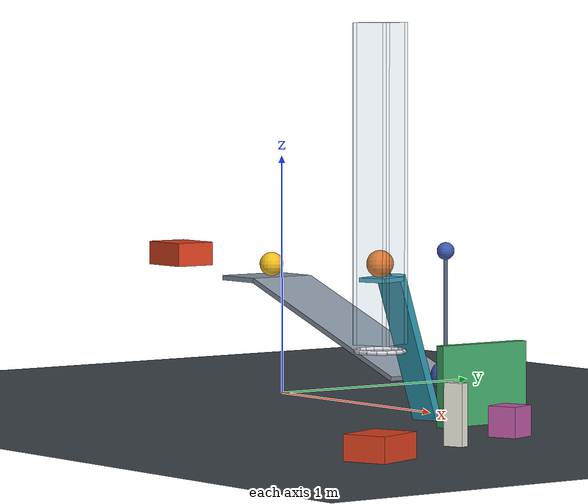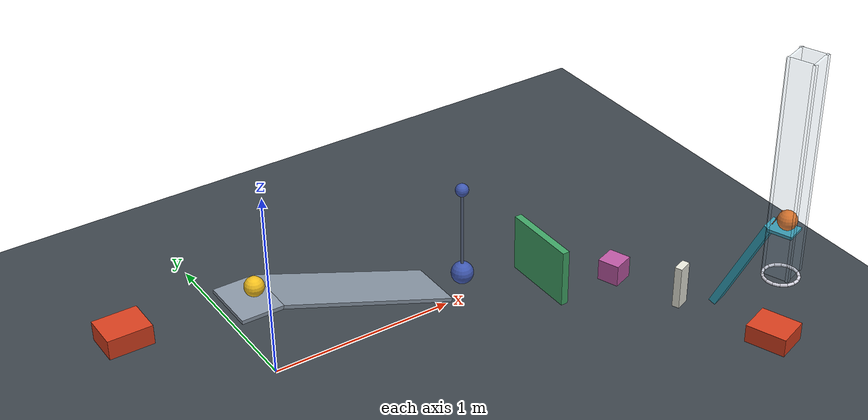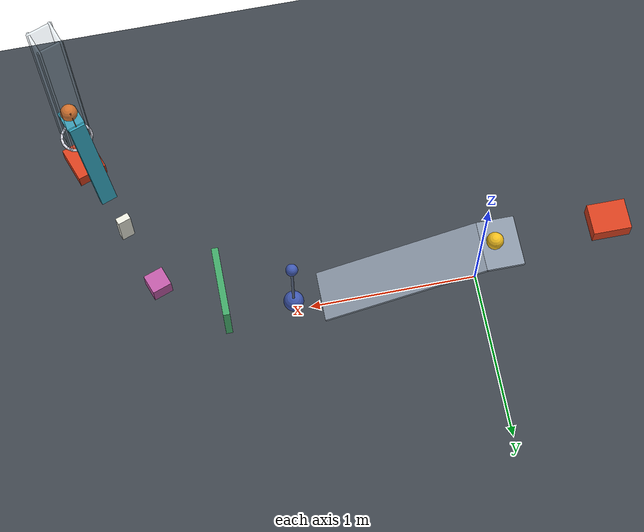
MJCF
<mujoco model="revised_passive_chain">
  <compiler angle="degree" autolimits="true"/>
  <option timestep="0.002" gravity="0 0 -9.81" integrator="implicitfast" solver="Newton" iterations="100" cone="elliptic" impratio="10" o_friction="0.68 0.68 0.005 0.002 0.002" o_solref="0.008 0.6901" o_solimp="0.95 0.99 0.001 0.5 2">
    <flag override="enable"/>
  </option>
  <size njmax="2000" nconmax="500"/>

  <!-- Global contact override sets sliding friction to 0.68. -->
  <!-- Damping ratio 0.6901 approximates restitution 0.05; it is not an exact restitution law. -->
  <!-- Small rolling friction dissipates residual ball motion. -->
  <!-- All bodies start with zero velocity. There are no motors or timed controls. -->

  <worldbody>
    <light name="main_light" pos="1 -1 5" dir="0 0 -1" diffuse="0.9 0.9 0.9"/>
    <geom name="floor" type="plane" pos="0 0 0" size="6 6 0.1" condim="6" friction="0.68 0.005 0.002" rgba="0.24 0.27 0.30 1"/>

    <site name="cart1_spring_anchor" pos="-0.745 0 0.552020143" size="0.004" rgba="0.85 0.35 0.12 1"/>
    <site name="pendulum1_spring_anchor" pos="1.099692621 0 0.16" size="0.004" rgba="0.85 0.35 0.12 1"/>
    <site name="door1_spring_anchor" pos="1.501086426 -0.05 0.165" size="0.004" rgba="0.85 0.35 0.12 1"/>
    <site name="lever1_spring_anchor" pos="2.173779 -1.145639 0.760631" size="0.004" rgba="0.85 0.35 0.12 1"/>

    <!-- A suspended slide avoids adding floor friction to the spring-driven cart. -->
    <body name="cart1" pos="-0.735 0 0.552020143">
      <joint name="cart1_slide" type="slide" axis="1 0 0" damping="0.20" limited="true" range="0 0.72" solreflimit="0.004 1" solimplimit="0.99 0.999 0.0001"/>
      <geom name="cart1_box" type="box" size="0.11 0.09 0.05" mass="0.50" condim="6" friction="0.68 0.005 0.002" rgba="0.85 0.25 0.12 1"/>
      <site name="cart1_spring_site" pos="0 0 0" size="0.004" rgba="0.85 0.35 0.12 1"/>
    </body>

    <!-- Inclined surface is 1.00 m long, 0.30 m wide, and inclined 20 degrees. -->
    <!-- Its low surface edge is at x=0.939692621, z=0.15. -->
    <body name="ramp1" pos="0 0 0">
      <geom name="ramp1_incline" type="box" pos="0.466426109 0 0.311613145" euler="0 20 0" size="0.50 0.15 0.01" condim="6" friction="0.68 0.005 0.002" rgba="0.55 0.60 0.66 1"/>
      <geom name="ramp1_staging_ledge" type="box" pos="-0.11 0 0.482020143" size="0.11 0.15 0.01" condim="6" friction="0.68 0.005 0.002" rgba="0.55 0.60 0.66 1"/>
    </body>

    <!-- The staging ledge holds ball1 until cart1 arrives. -->
    <!-- Initial cart-face to ball-surface separation is 0.50 m. -->
    <body name="ball1" pos="-0.075 0 0.542020143">
      <freejoint name="ball1_free"/>
      <geom name="ball1_sphere" type="sphere" size="0.05" mass="0.20" condim="6" friction="0.68 0.005 0.002" rgba="0.95 0.75 0.12 1"/>
    </body>

    <!-- The bob's near surface is 0.10 m beyond the ramp's low edge. -->
    <!-- Total pendulum mass is 0.35 kg; pivot-to-bob-centre length is 0.50 m. -->
    <!-- No stop competes with its nominal 40-degree door contact. -->
    <body name="pendulum1" pos="1.099692621 0 0.66">
      <joint name="pendulum1_hinge" type="hinge" axis="0 -1 0" damping="0.04" frictionloss="0.001" limited="true" range="0 85" solreflimit="0.004 1" solimplimit="0.99 0.999 0.0001"/>
      <geom name="pendulum1_hub" type="sphere" size="0.035" mass="0.305" condim="6" friction="0.68 0.005 0.002" rgba="0.25 0.35 0.70 1"/>
      <geom name="pendulum1_rod" type="capsule" fromto="0 0 0 0 0 -0.50" size="0.008" mass="0.005" condim="6" friction="0.68 0.005 0.002" rgba="0.35 0.40 0.50 1"/>
      <geom name="pendulum1_bob" type="sphere" pos="0 0 -0.50" size="0.06" mass="0.040" condim="6" friction="0.68 0.005 0.002" rgba="0.25 0.35 0.70 1"/>
      <site name="pendulum1_spring_site" pos="0 0 -0.40" size="0.004" rgba="0.85 0.35 0.12 1"/>
    </body>

    <!-- Initial panel face equals the bob's rightmost extent at 40 degrees. -->
    <!-- Door rotates clockwise viewed from above and stops at 70 degrees. -->
    <body name="door1" pos="1.501086426 -0.35 0.005">
      <joint name="door1_hinge" type="hinge" axis="0 0 -1" damping="0.04" frictionloss="0.002" limited="true" range="0 70" solreflimit="0.004 1" solimplimit="0.99 0.999 0.0001"/>
      <geom name="door1_panel" type="box" pos="0 0.21 0.16" size="0.02 0.21 0.16" mass="0.45" condim="6" friction="0.68 0.005 0.002" rgba="0.25 0.65 0.40 1"/>
      <site name="door1_spring_site" pos="0 0.20 0.16" size="0.004" rgba="0.85 0.35 0.12 1"/>
    </body>

    <!-- Door meets block1 just before reaching its stop. -->
    <!-- Downstream horizontal direction is (0.342020143, -0.939692621, 0). -->
    <body name="block1" pos="1.865027426 -0.297349570 0.06" euler="0 0 -70">
      <freejoint name="block1_free"/>
      <geom name="block1_cube" type="box" size="0.06 0.06 0.06" mass="0.35" condim="6" friction="0.68 0.005 0.002" rgba="0.75 0.35 0.65 1"/>
    </body>

    <!-- Initial face-to-face distance from block1 to domino1 is 0.32 m. -->
    <body name="domino1" pos="2.001835483 -0.673226618 0.12" euler="0 0 -70">
      <freejoint name="domino1_free"/>
      <geom name="domino1_box" type="box" size="0.02 0.04 0.12" mass="0.25" condim="6" friction="0.68 0.005 0.002" rgba="0.92 0.92 0.87 1"/>
    </body>

    <!-- Lever begins 65 degrees above horizontal. -->
    <!-- Geometry targets contact after 0.18 m horizontal travel of the domino's upper front corner. -->
    <!-- This geometric target assumes rotation about the domino's lower front edge. -->
    <body name="lever1" pos="2.115962 -0.986787 0.398108" xyaxes="0.144544 -0.397131 0.906308 0.939693 0.342020 0">
      <inertial pos="0 0 0" mass="0.50" diaginertia="0.000483333 0.015066667 0.015416667"/>
      <joint name="lever1_hinge" type="hinge" axis="0 -1 0" damping="0.04" limited="true" range="0 45" solreflimit="0.004 1" solimplimit="0.99 0.999 0.0001"/>
      <geom name="lever1_beam" type="box" size="0.30 0.05 0.02" condim="6" friction="0.68 0.005 0.002" rgba="0.20 0.65 0.75 1"/>
      <geom name="lever1_launch_shelf" type="box" pos="0.320219 0 -0.062291" xyaxes="0.422618 0 -0.906308 0 1 0" size="0.065 0.055 0.008" condim="6" friction="0.68 0.005 0.002" rgba="0.20 0.65 0.75 1"/>
      <site name="lever1_spring_site" pos="0.30 0 0" size="0.004" rgba="0.85 0.35 0.12 1"/>
    </body>

    <body name="ball2" pos="2.184977 -1.176403 0.72">
      <freejoint name="ball2_free"/>
      <geom name="ball2_sphere" type="sphere" size="0.05" mass="0.20" contype="4" conaffinity="5" condim="6" friction="0.68 0.005 0.002" rgba="0.95 0.45 0.10 1"/>
    </body>

    <!-- Ring centre is exactly 0.32 m below ball2's initial centre. -->
    <!-- Capsule centreline radius compensates for polygon chords to give 0.16 m clear diameter. -->
    <!-- The transparent guide confines ball2 but does not collide with the lever. -->
    <body name="ring1" pos="2.184977 -1.176403 0.40">
      <geom name="ring1_segment_00" type="capsule" fromto="0.089724 0 0 0.082894 0.034336 0" size="0.008" contype="4" conaffinity="4" condim="6" friction="0.68 0.005 0.002" rgba="0.85 0.85 0.90 1"/>
      <geom name="ring1_segment_01" type="capsule" fromto="0.082894 0.034336 0 0.063444 0.063444 0" size="0.008" contype="4" conaffinity="4" condim="6" friction="0.68 0.005 0.002" rgba="0.85 0.85 0.90 1"/>
      <geom name="ring1_segment_02" type="capsule" fromto="0.063444 0.063444 0 0.034336 0.082894 0" size="0.008" contype="4" conaffinity="4" condim="6" friction="0.68 0.005 0.002" rgba="0.85 0.85 0.90 1"/>
      <geom name="ring1_segment_03" type="capsule" fromto="0.034336 0.082894 0 0 0.089724 0" size="0.008" contype="4" conaffinity="4" condim="6" friction="0.68 0.005 0.002" rgba="0.85 0.85 0.90 1"/>
      <geom name="ring1_segment_04" type="capsule" fromto="0 0.089724 0 -0.034336 0.082894 0" size="0.008" contype="4" conaffinity="4" condim="6" friction="0.68 0.005 0.002" rgba="0.85 0.85 0.90 1"/>
      <geom name="ring1_segment_05" type="capsule" fromto="-0.034336 0.082894 0 -0.063444 0.063444 0" size="0.008" contype="4" conaffinity="4" condim="6" friction="0.68 0.005 0.002" rgba="0.85 0.85 0.90 1"/>
      <geom name="ring1_segment_06" type="capsule" fromto="-0.063444 0.063444 0 -0.082894 0.034336 0" size="0.008" contype="4" conaffinity="4" condim="6" friction="0.68 0.005 0.002" rgba="0.85 0.85 0.90 1"/>
      <geom name="ring1_segment_07" type="capsule" fromto="-0.082894 0.034336 0 -0.089724 0 0" size="0.008" contype="4" conaffinity="4" condim="6" friction="0.68 0.005 0.002" rgba="0.85 0.85 0.90 1"/>
      <geom name="ring1_segment_08" type="capsule" fromto="-0.089724 0 0 -0.082894 -0.034336 0" size="0.008" contype="4" conaffinity="4" condim="6" friction="0.68 0.005 0.002" rgba="0.85 0.85 0.90 1"/>
      <geom name="ring1_segment_09" type="capsule" fromto="-0.082894 -0.034336 0 -0.063444 -0.063444 0" size="0.008" contype="4" conaffinity="4" condim="6" friction="0.68 0.005 0.002" rgba="0.85 0.85 0.90 1"/>
      <geom name="ring1_segment_10" type="capsule" fromto="-0.063444 -0.063444 0 -0.034336 -0.082894 0" size="0.008" contype="4" conaffinity="4" condim="6" friction="0.68 0.005 0.002" rgba="0.85 0.85 0.90 1"/>
      <geom name="ring1_segment_11" type="capsule" fromto="-0.034336 -0.082894 0 0 -0.089724 0" size="0.008" contype="4" conaffinity="4" condim="6" friction="0.68 0.005 0.002" rgba="0.85 0.85 0.90 1"/>
      <geom name="ring1_segment_12" type="capsule" fromto="0 -0.089724 0 0.034336 -0.082894 0" size="0.008" contype="4" conaffinity="4" condim="6" friction="0.68 0.005 0.002" rgba="0.85 0.85 0.90 1"/>
      <geom name="ring1_segment_13" type="capsule" fromto="0.034336 -0.082894 0 0.063444 -0.063444 0" size="0.008" contype="4" conaffinity="4" condim="6" friction="0.68 0.005 0.002" rgba="0.85 0.85 0.90 1"/>
      <geom name="ring1_segment_14" type="capsule" fromto="0.063444 -0.063444 0 0.082894 -0.034336 0" size="0.008" contype="4" conaffinity="4" condim="6" friction="0.68 0.005 0.002" rgba="0.85 0.85 0.90 1"/>
      <geom name="ring1_segment_15" type="capsule" fromto="0.082894 -0.034336 0 0.089724 0 0" size="0.008" contype="4" conaffinity="4" condim="6" friction="0.68 0.005 0.002" rgba="0.85 0.85 0.90 1"/>
      <geom name="ring1_guide_forward" type="box" pos="0.021547 -0.059201 0.6125" xyaxes="0.342020 -0.939693 0 0.939693 0.342020 0" size="0.006 0.075 0.5875" contype="4" conaffinity="4" condim="6" friction="0.68 0.005 0.002" rgba="0.65 0.80 0.90 0.18"/>
      <geom name="ring1_guide_backward" type="box" pos="-0.021547 0.059201 0.6125" xyaxes="0.342020 -0.939693 0 0.939693 0.342020 0" size="0.006 0.075 0.5875" contype="4" conaffinity="4" condim="6" friction="0.68 0.005 0.002" rgba="0.65 0.80 0.90 0.18"/>
      <geom name="ring1_guide_left" type="box" pos="0.059201 0.021547 0.6125" xyaxes="0.342020 -0.939693 0 0.939693 0.342020 0" size="0.075 0.006 0.5875" contype="4" conaffinity="4" condim="6" friction="0.68 0.005 0.002" rgba="0.65 0.80 0.90 0.18"/>
      <geom name="ring1_guide_right" type="box" pos="-0.059201 -0.021547 0.6125" xyaxes="0.342020 -0.939693 0 0.939693 0.342020 0" size="0.075 0.006 0.5875" contype="4" conaffinity="4" condim="6" friction="0.68 0.005 0.002" rgba="0.65 0.80 0.90 0.18"/>
    </body>

    <!-- Ball centre at top contact is z=0.15, 0.25 m below the ring plane. -->
    <body name="cart2" pos="2.184977 -1.176403 0.05" euler="0 0 -70">
      <joint name="cart2_slide" type="slide" axis="1 0 0" damping="0.20" limited="true" range="-0.5 0.5" solreflimit="0.004 1" solimplimit="0.99 0.999 0.0001"/>
      <geom name="cart2_box" type="box" size="0.11 0.09 0.05" mass="0.50" condim="6" friction="0.68 0.005 0.002" rgba="0.85 0.25 0.12 1"/>
    </body>
  </worldbody>

  <tendon>
    <!-- Initial length 0.01 m; relaxed minimum 0.21 m: compression is 0.20 m. -->
    <!-- The dead band disengages the spring after decompression, allowing 0.50 m travel. -->
    <spatial name="cart1_axial_spring" stiffness="18" damping="0" springlength="0.21 2" width="0.003" rgba="0.85 0.35 0.12 1">
      <site site="cart1_spring_anchor"/>
      <site site="cart1_spring_site"/>
    </spatial>

    <!-- Explicit additional passive energy stores; these are not specified in the brief. -->
    <spatial name="pendulum1_overcentre_spring" stiffness="30" damping="0" springlength="0.22 2" width="0.002" rgba="0.85 0.35 0.12 1">
      <site site="pendulum1_spring_anchor"/>
      <site site="pendulum1_spring_site"/>
    </spatial>
    <spatial name="door1_overcentre_spring" stiffness="95" damping="0" springlength="0.50 2" width="0.002" rgba="0.85 0.35 0.12 1">
      <site site="door1_spring_anchor"/>
      <site site="door1_spring_site"/>
    </spatial>
    <spatial name="lever1_overcentre_spring" stiffness="200" damping="0" springlength="0.35 2" width="0.002" rgba="0.85 0.35 0.12 1">
      <site site="lever1_spring_anchor"/>
      <site site="lever1_spring_site"/>
    </spatial>
  </tendon>

  <!-- Default key positions are the model's initial poses; default velocities are zero. -->
  <keyframe>
    <key name="start" time="0"/>
  </keyframe>
</mujoco>
